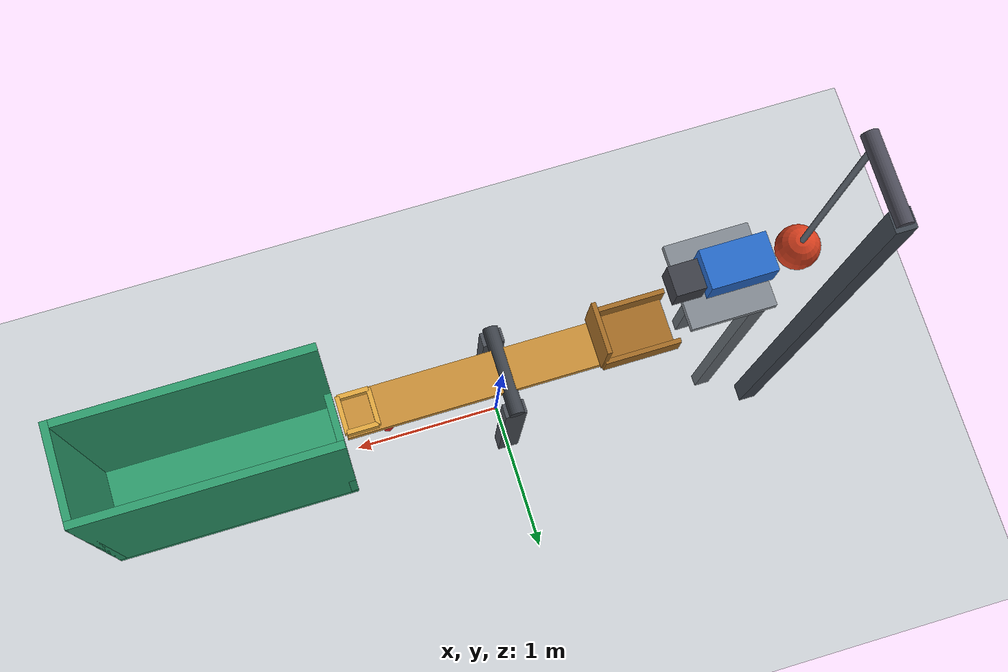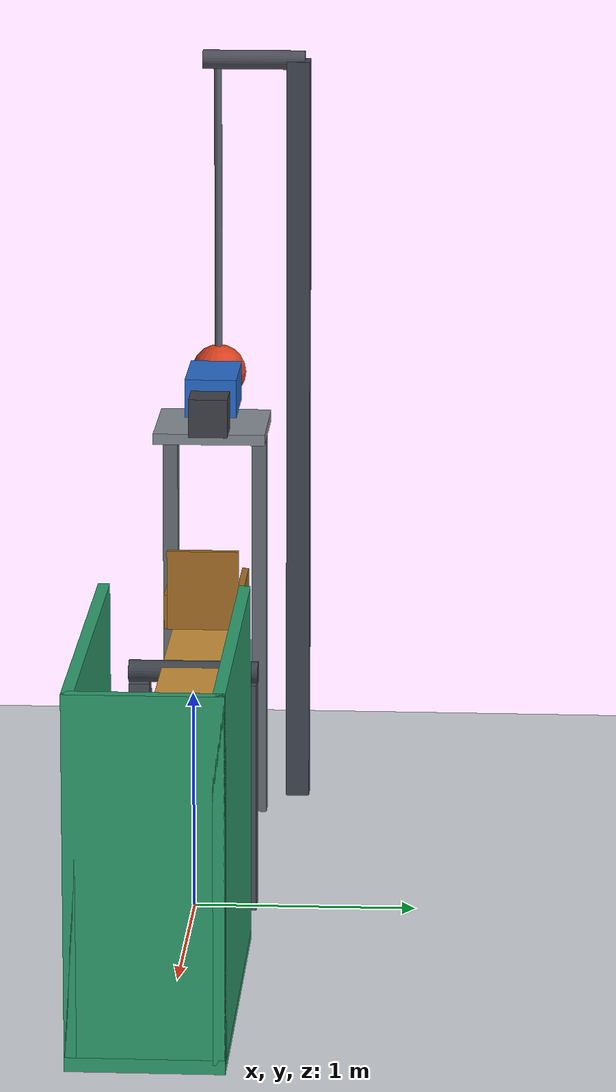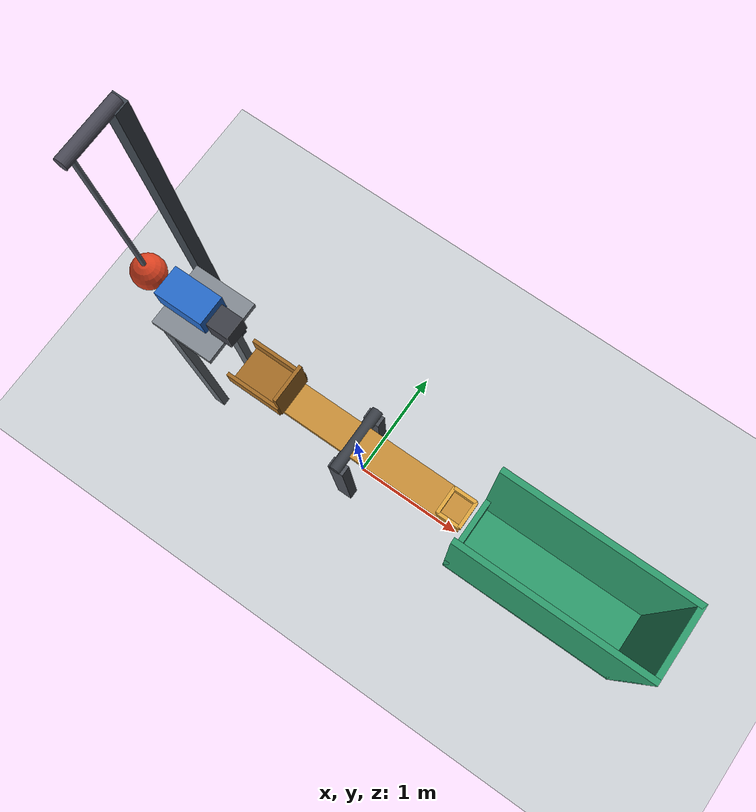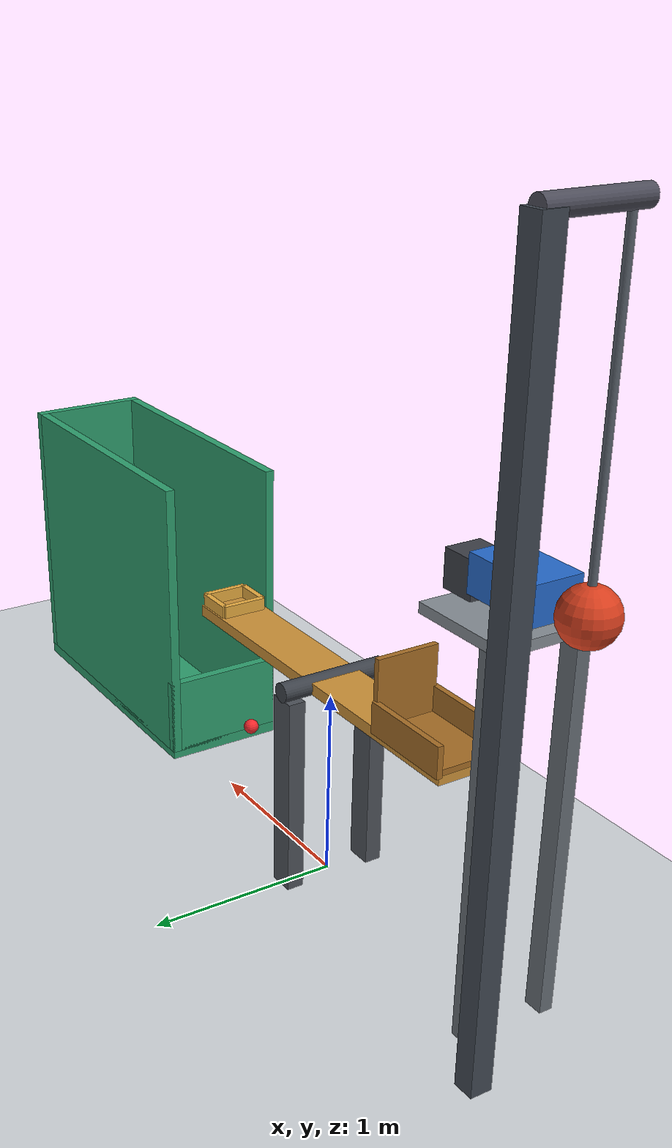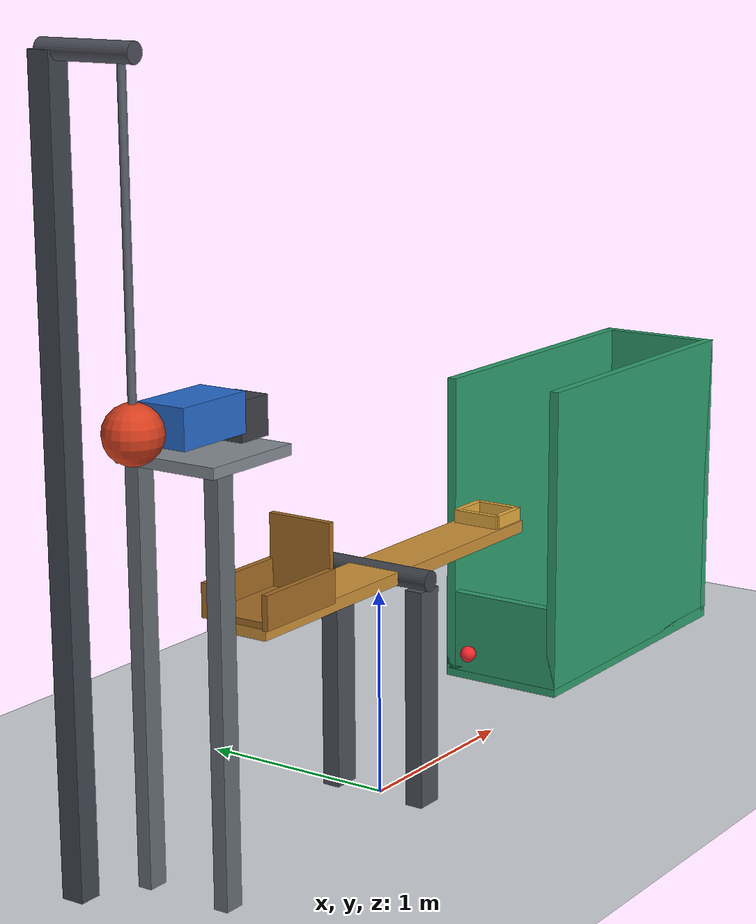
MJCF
<mujoco model="pendulum_cart_seesaw_catch_revised">
  <compiler angle="radian" inertiafromgeom="auto"/>
  <option timestep="0.002" gravity="0 0 -9.81" integrator="implicitfast" cone="elliptic" iterations="100"/>
  <size njmax="2000" nconmax="400"/>
  <visual>
    <headlight ambient="0.4 0.4 0.4" diffuse="0.7 0.7 0.7" specular="0.2 0.2 0.2"/>
    <global azimuth="110" elevation="-18"/>
  </visual>

  <worldbody>
    <light name="main_light" pos="-1 -3 6" dir="0.2 0.3 -1" directional="true"/>
    <camera name="overview" pos="4.2 -8 4.4" xyaxes="0.88 0.47 0 -0.17 0.32 0.93"/>
    <geom name="floor" type="plane" size="8 5 0.1" rgba="0.82 0.84 0.86 1" friction="0.8 0.02 0.01" condim="6"/>

    <!-- Release height: 1.5 * (1 - cos(0.927295218)) = 0.6 m. -->
    <body name="pendulum_support" pos="-1.7 0 0">
      <geom name="pendulum_support_post" type="box" pos="0 0.38 1.795" size="0.055 0.055 1.795" rgba="0.25 0.28 0.32 1" contype="0" conaffinity="0"/>
      <geom name="pendulum_support_axle" type="cylinder" pos="0 0.17 3.59" quat="0.7071067812 0.7071067812 0 0" size="0.045 0.24" rgba="0.3 0.3 0.35 1" contype="0" conaffinity="0"/>
    </body>

    <body name="pendulum" pos="-1.7 0 3.59">
      <joint name="pendulum_hinge" type="hinge" axis="0 1 0" limited="true" range="-0.3 1.05" damping="0.025" frictionloss="0.002" solreflimit="0.006 1"/>
      <geom name="pendulum_rod" type="capsule" fromto="0 0 0 0 0 -1.5" size="0.018" mass="0.07" rgba="0.35 0.38 0.42 1"/>
      <geom name="pendulum_striker" type="sphere" pos="0 0 -1.5" size="0.13" mass="4.8" rgba="0.85 0.25 0.12 1" friction="0.3 0.005 0.001" solref="0.006 1" solimp="0.95 0.99 0.001"/>
    </body>

    <!-- The weight's COM is only 25 mm inside the shelf edge.
         Shelf contact has priority so its low friction overrides the weight's friction. -->
    <body name="weight_shelf" pos="0 0 0">
      <geom name="weight_shelf_top" type="box" pos="-1.2625 0 1.925" size="0.2575 0.26 0.025" rgba="0.52 0.55 0.58 1" priority="2" condim="3" friction="0.025 0.001 0.0002" solref="0.006 1" solimp="0.95 0.99 0.001"/>
      <geom name="weight_shelf_leg_front" type="box" pos="-1.43 -0.21 0.95" size="0.05 0.035 0.95" rgba="0.4 0.43 0.46 1"/>
      <geom name="weight_shelf_leg_back" type="box" pos="-1.43 0.21 0.95" size="0.05 0.035 0.95" rgba="0.4 0.43 0.46 1"/>
    </body>

    <body name="cart" pos="-1.33 0 2.09">
      <joint name="cart_slide" type="slide" axis="1 0 0" limited="true" range="0 0.24" damping="0.04" frictionloss="0.01" solreflimit="0.004 1" solimplimit="0.98 0.995 0.001"/>
      <geom name="cart_block" type="box" size="0.20 0.12 0.09" mass="0.8" rgba="0.15 0.42 0.8 1" priority="1" friction="0.2 0.005 0.001" solref="0.006 1" solimp="0.95 0.99 0.001"/>
    </body>

    <body name="weight" pos="-1.03 0 2.04">
      <freejoint name="weight_free"/>
      <geom name="weight_block" type="box" size="0.09 0.09 0.09" mass="3" rgba="0.24 0.25 0.28 1" friction="0.9 0.02 0.005" condim="6" solref="0.008 1" solimp="0.95 0.99 0.001"/>
    </body>

    <body name="seesaw_support" pos="0 0 0">
      <geom name="seesaw_support_front" type="box" pos="0 -0.24 0.53" size="0.07 0.045 0.53" rgba="0.3 0.32 0.35 1"/>
      <geom name="seesaw_support_back" type="box" pos="0 0.24 0.53" size="0.07 0.045 0.53" rgba="0.3 0.32 0.35 1"/>
      <geom name="seesaw_support_axle" type="cylinder" pos="0 0 1.1" quat="0.7071067812 0.7071067812 0 0" size="0.05 0.29" rgba="0.24 0.26 0.29 1" contype="0" conaffinity="0"/>
    </body>

    <!-- The lower joint limit arrests the descending weight end.
         The shallow ball cradle is open upward for inertial release. -->
    <body name="seesaw" pos="0 0 1.1">
      <inertial pos="0 0 0" mass="0.45" diaginertia="0.01 0.17 0.17"/>
      <joint name="seesaw_hinge" type="hinge" axis="0 1 0" limited="true" range="0.35 0.75" damping="0.06" frictionloss="0.005" solreflimit="0.004 1" solimplimit="0.99 0.999 0.0005"/>
      <geom name="seesaw_beam" type="box" size="1.05 0.14 0.03" rgba="0.8 0.57 0.22 1" friction="0.8 0.015 0.003" solref="0.006 1"/>
      <geom name="seesaw_weight_pad" type="box" pos="-0.84 0 0.045" size="0.23 0.15 0.015" rgba="0.65 0.43 0.15 1" friction="1 0.025 0.005" condim="6" solref="0.008 1"/>
      <geom name="seesaw_weight_inner_wall" type="box" pos="-0.60 0 0.215" size="0.015 0.165 0.185" rgba="0.65 0.43 0.15 1" friction="0.8 0.02 0.005" solref="0.008 1"/>
      <geom name="seesaw_weight_front_wall" type="box" pos="-0.84 -0.165 0.11" size="0.245 0.015 0.08" rgba="0.65 0.43 0.15 1" friction="0.8 0.02 0.005" solref="0.008 1"/>
      <geom name="seesaw_weight_back_wall" type="box" pos="-0.84 0.165 0.11" size="0.245 0.015 0.08" rgba="0.65 0.43 0.15 1" friction="0.8 0.02 0.005" solref="0.008 1"/>
      <geom name="seesaw_ball_outer_lip" type="box" pos="1.045 0 0.0625" size="0.015 0.12 0.0325" rgba="0.9 0.67 0.25 1" friction="0.25 0.005 0.001" solref="0.006 1"/>
      <geom name="seesaw_ball_inner_lip" type="box" pos="0.845 0 0.0625" size="0.015 0.12 0.0325" rgba="0.9 0.67 0.25 1" friction="0.25 0.005 0.001" solref="0.006 1"/>
      <geom name="seesaw_ball_front_lip" type="box" pos="0.945 -0.115 0.0625" size="0.10 0.015 0.0325" rgba="0.9 0.67 0.25 1" friction="0.25 0.005 0.001" solref="0.006 1"/>
      <geom name="seesaw_ball_back_lip" type="box" pos="0.945 0.115 0.0625" size="0.10 0.015 0.0325" rgba="0.9 0.67 0.25 1" friction="0.25 0.005 0.001" solref="0.006 1"/>
    </body>

    <body name="ball" pos="0.772768328 0 0.477127537">
      <freejoint name="ball_free"/>
      <geom name="ball_sphere" type="sphere" size="0.04" mass="0.045" rgba="0.95 0.16 0.18 1" friction="0.7 0.015 0.008" condim="6" solref="0.006 1" solimp="0.95 0.995 0.001"/>
    </body>

    <!-- Low entry rim, enlarged interior, and dissipative six-dimensional contact. -->
    <body name="cup" pos="0 0 0">
      <geom name="cup_bottom" type="box" pos="1.90 0 0.25" size="0.825 0.325 0.03" rgba="0.18 0.62 0.43 1" friction="1 0.05 0.03" condim="6" solref="0.008 1" solimp="0.95 0.995 0.001"/>
      <geom name="cup_entry_wall" type="box" pos="1.10 0 0.47" size="0.025 0.325 0.21" rgba="0.18 0.62 0.43 1" friction="1 0.05 0.03" condim="6" solref="0.008 1"/>
      <geom name="cup_far_wall" type="box" pos="2.70 0 1.03" size="0.025 0.325 0.77" rgba="0.18 0.62 0.43 1" friction="1 0.05 0.03" condim="6" solref="0.008 1"/>
      <geom name="cup_front_wall" type="box" pos="1.90 -0.30 1.03" size="0.825 0.025 0.77" rgba="0.18 0.62 0.43 1" friction="1 0.05 0.03" condim="6" solref="0.008 1"/>
      <geom name="cup_back_wall" type="box" pos="1.90 0.30 1.03" size="0.825 0.025 0.77" rgba="0.18 0.62 0.43 1" friction="1 0.05 0.03" condim="6" solref="0.008 1"/>
    </body>
  </worldbody>

  <keyframe>
    <key name="start" time="0" qpos="0.927295218 0 -1.03 0 2.04 1 0 0 0 0.75 0.772768328 0 0.477127537 1 0 0 0" qvel="0 0 0 0 0 0 0 0 0 0 0 0 0 0 0"/>
  </keyframe>
</mujoco>
